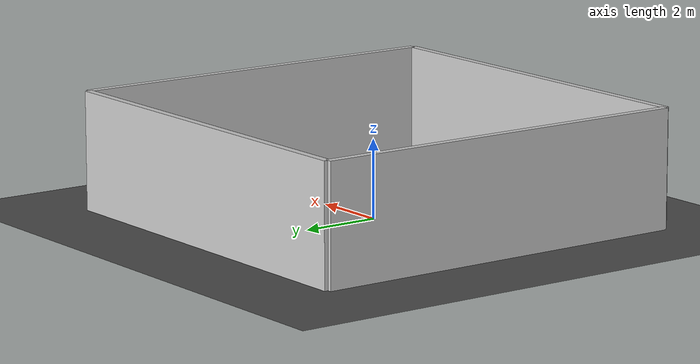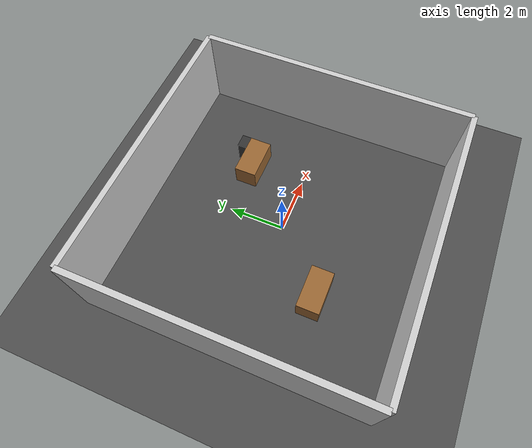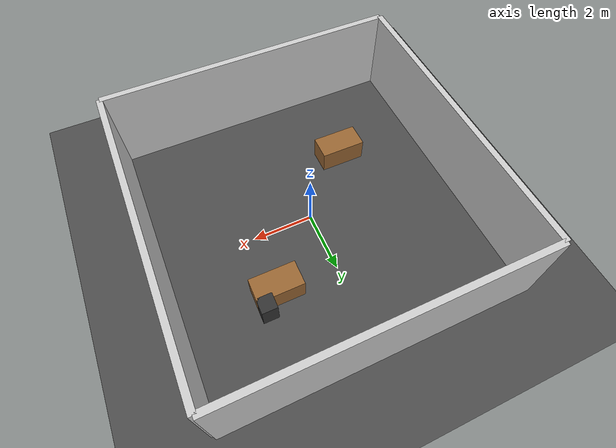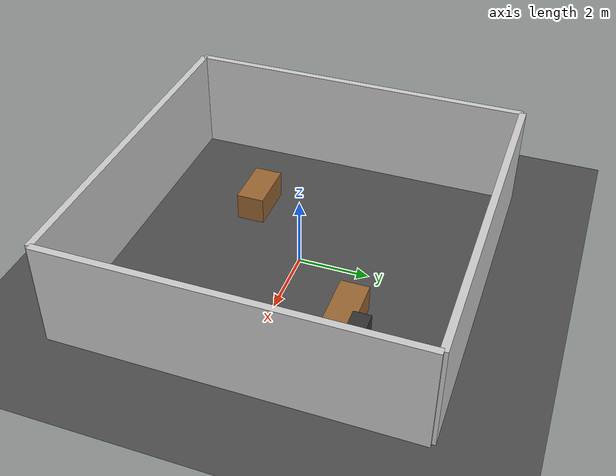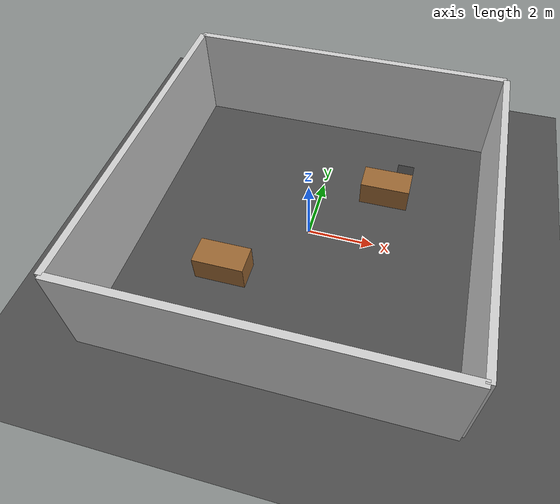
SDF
<sdf version="1.8">
 <world name="simple_office">
  <physics name="1ms" type="ignored">
   <max_step_size>0.001</max_step_size>
   <real_time_factor>1.0</real_time_factor>
  </physics>
  <plugin filename="gz-sim-physics-system" name="gz::sim::systems::Physics"/>
  <plugin filename="gz-sim-user-commands-system" name="gz::sim::systems::UserCommands"/>
  <plugin filename="gz-sim-scene-broadcaster-system" name="gz::sim::systems::SceneBroadcaster"/>
  <plugin filename="gz-sim-contact-system" name="gz::sim::systems::Contact"/>
  <plugin filename="gz-sim-sensors-system" name="gz::sim::systems::Sensors">
   <render_engine>ogre2</render_engine>
  </plugin>
  <plugin filename="gz-sim-scene-broadcaster-system" name="gz::sim::systems::SceneBroadcaster"/>
  <light type="directional" name="sun">
   <pose>0 0 10 0 0 0</pose>
   <diffuse>0.8 0.8 0.8 1</diffuse>
   <specular>0.2 0.2 0.2 1</specular>
   <attenuation>
    <range>1000</range>
    <constant>0.9</constant>
    <linear>0.01</linear>
    <quadratic>0.001</quadratic>
   </attenuation>
   <direction>-0.5 0.1 -0.9</direction>
  </light>
  <model name="ground_plane">
   <static>true</static>
   <link name="link">
    <collision name="collision">
     <geometry><plane><normal>0 0 1</normal><size>100 100</size></plane></geometry>
    </collision>
    <visual name="visual">
     <geometry><plane><normal>0 0 1</normal><size>100 100</size></plane></geometry>
     <material>
      <ambient>0.3 0.3 0.3 1</ambient>
      <diffuse>0.3 0.3 0.3 1</diffuse>
      <specular>0.3 0.3 0.3 1</specular>
     </material>
    </visual>
   </link>
  </model>
  <model name="wall_1">
   <static>true</static>
   <pose>5 0 1.5 0 0 0</pose>
   <link name="link">
    <collision name="collision"><geometry><box><size>0.2 10 3</size></box></geometry></collision>
    <visual name="visual">
     <geometry><box><size>0.2 10 3</size></box></geometry>
     <material>
      <ambient>0.8 0.8 0.8 1</ambient>
      <diffuse>0.8 0.8 0.8 1</diffuse>
      <specular>0.8 0.8 0.8 1</specular>
     </material>
    </visual>
   </link>
  </model>
  <model name="wall_2">
   <static>true</static>
   <pose>-5 0 1.5 0 0 0</pose>
   <link name="link">
    <collision name="collision"><geometry><box><size>0.2 10 3</size></box></geometry></collision>
    <visual name="visual">
     <geometry><box><size>0.2 10 3</size></box></geometry>
     <material>
      <ambient>0.8 0.8 0.8 1</ambient>
      <diffuse>0.8 0.8 0.8 1</diffuse>
      <specular>0.8 0.8 0.8 1</specular>
     </material>
    </visual>
   </link>
  </model>
  <model name="wall_3">
   <static>true</static>
   <pose>0 5 1.5 0 0 0</pose>
   <link name="link">
    <collision name="collision"><geometry><box><size>10 0.2 3</size></box></geometry></collision>
    <visual name="visual">
     <geometry><box><size>10 0.2 3</size></box></geometry>
     <material>
      <ambient>0.8 0.8 0.8 1</ambient>
      <diffuse>0.8 0.8 0.8 1</diffuse>
      <specular>0.8 0.8 0.8 1</specular>
     </material>
    </visual>
   </link>
  </model>
  <model name="wall_4">
   <static>true</static>
   <pose>0 -5 1.5 0 0 0</pose>
   <link name="link">
    <collision name="collision"><geometry><box><size>10 0.2 3</size></box></geometry></collision>
    <visual name="visual">
     <geometry><box><size>10 0.2 3</size></box></geometry>
     <material>
      <ambient>0.8 0.8 0.8 1</ambient>
      <diffuse>0.8 0.8 0.8 1</diffuse>
      <specular>0.8 0.8 0.8 1</specular>
     </material>
    </visual>
   </link>
  </model>
  <model name="desk_1">
   <static>true</static>
   <pose>2 2 0.4 0 0 0</pose>
   <link name="link">
    <collision name="collision"><geometry><box><size>1.5 0.8 0.8</size></box></geometry></collision>
    <visual name="visual">
     <geometry><box><size>1.5 0.8 0.8</size></box></geometry>
     <material>
      <ambient>0.6 0.4 0.2 1</ambient>
      <diffuse>0.6 0.4 0.2 1</diffuse>
      <specular>0.6 0.4 0.2 1</specular>
     </material>
    </visual>
   </link>
  </model>
  <model name="desk_2">
   <static>true</static>
   <pose>-2 -2 0.4 0 0 0</pose>
   <link name="link">
    <collision name="collision"><geometry><box><size>1.5 0.8 0.8</size></box></geometry></collision>
    <visual name="visual">
     <geometry><box><size>1.5 0.8 0.8</size></box></geometry>
     <material>
      <ambient>0.6 0.4 0.2 1</ambient>
      <diffuse>0.6 0.4 0.2 1</diffuse>
      <specular>0.6 0.4 0.2 1</specular>
     </material>
    </visual>
   </link>
  </model>
  <model name="chair_1">
   <static>true</static>
   <pose>2.5 2.5 0.4 0 0 0</pose>
   <link name="link">
    <collision name="collision"><geometry><box><size>0.5 0.5 0.8</size></box></geometry></collision>
    <visual name="visual">
     <geometry><box><size>0.5 0.5 0.8</size></box></geometry>
     <material>
      <ambient>0.2 0.2 0.2 1</ambient>
      <diffuse>0.2 0.2 0.2 1</diffuse>
      <specular>0.2 0.2 0.2 1</specular>
     </material>
    </visual>
   </link>
  </model>
 </world>
</sdf>
